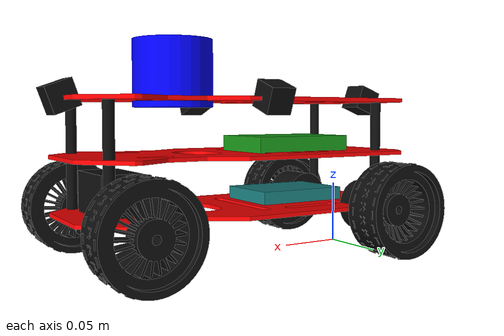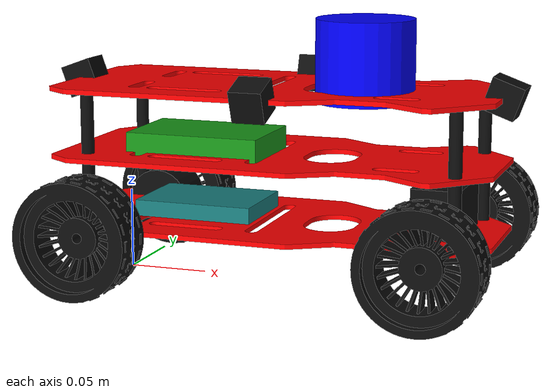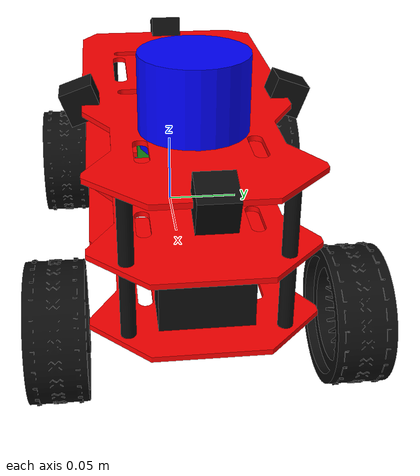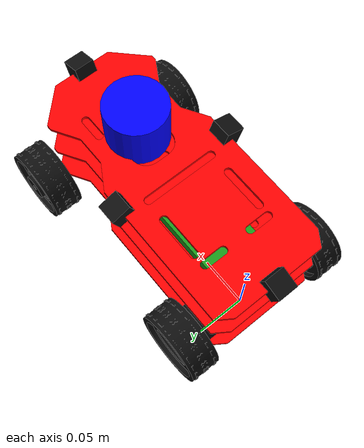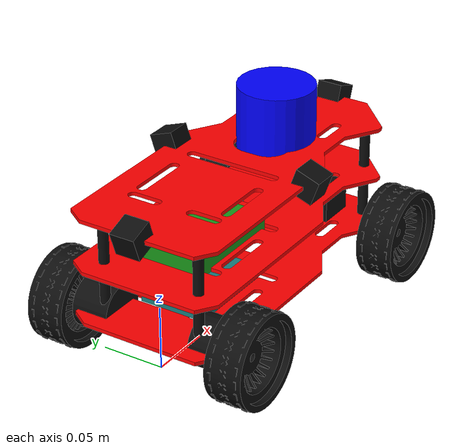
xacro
<?xml version="1.0"?>
<robot name="ackermann_robot" xmlns:xacro="http://www.ros.org/wiki/xacro">

  <xacro:include filename="$(find ackermann_robot)/urdf/all_sensors.xacro" />
  <!-- Standoff positions -->
  <xacro:property name="standoff_x" value="${chassis_length/2 - 0.02}"/>
  <xacro:property name="standoff_y" value="${chassis_width/2 - 0.02}"/>

  <!-- Materials -->
  <material name="chassis_red">
    <color rgba="1.0 0.0 0.0 1"/>
  </material>

  <material name="wheel_black">
    <color rgba="0.05 0.05 0.05 1"/>
  </material>

  <!-- Base frame            -->
  <!-- Robot center reference -->

  <link name="base_link"></link>
  <link name="base_footprint"></link>

  <joint name="base_footprint_joint" type="fixed">
      <parent link="base_link"/>
      <child link="base_footprint"/>
      <origin xyz="0 0 -${chassis_height/2}" rpy="0 0 0"/>
  </joint>
  <!-- Chassis               -->
  <link name="chassis_link">
    <inertial>
      <origin xyz="0 0 ${chassis_height/2}"/>
      <mass value="${chassis_mass}"/>
      <inertia
        ixx="1.50903123e-04" ixy="4.70052075e-08" ixz="6.59784866e-15"
        iyy="8.14177826e-04" iyz="1.01460270e-15"
        izz="9.64991335e-04"/>
      </inertial>

    <!-- Bottom plate -->
    <visual>
      <origin xyz="0 0 ${wheel_radius + plate_thickness/2}" rpy="0 0 0"/>
      <geometry>
        <mesh filename="package://ackermann_robot/meshes/chassis_visual.stl" scale="0.001 0.001 0.001"/>
      </geometry>
      <material name="chassis_red"/>
    </visual>

    <!-- Middle plate -->
    <visual>
      <origin xyz="0 0 ${wheel_radius + plate_thickness/2 + plate_thickness + standoff_height}" rpy="0 0 0"/>
      <geometry>
        <mesh filename="package://ackermann_robot/meshes/chassis_visual.stl" scale="0.001 0.001 0.001"></mesh>
      </geometry>
      <material name="chassis_red"/>
    </visual>

    <!-- Top plate -->
    <visual>
      <origin xyz="0 0 ${wheel_radius + plate_thickness/2 + 2*plate_thickness + 2*standoff_height}" rpy="0 0 0"/>
      <geometry>
        <mesh filename="package://ackermann_robot/meshes/chassis_visual.stl" scale="0.001 0.001 0.001"></mesh>
      </geometry>
      <material name="chassis_red"/>
    </visual>

    <!-- Front left standoff -->
    <visual>
      <origin xyz="${standoff_x} ${standoff_y} ${wheel_radius + plate_thickness + standoff_height/2}" rpy="0 0 0"/>
      <geometry>
        <cylinder radius="${standoff_radius}" length="${standoff_height}"/>
      </geometry>
      <material name="wheel_black"/>
    </visual>

    <!-- Front right -->
    <visual>
      <origin xyz="${standoff_x} -${standoff_y} ${wheel_radius + plate_thickness + standoff_height/2}" rpy="0 0 0"/>
      <geometry>
        <cylinder radius="${standoff_radius}" length="${standoff_height}"/>
      </geometry>
      <material name="wheel_black"/>
    </visual>

    <!-- Rear left -->
    <visual>
      <origin xyz="-${standoff_x} ${standoff_y} ${wheel_radius + plate_thickness + standoff_height/2}" rpy="0 0 0"/>
      <geometry>
        <cylinder radius="${standoff_radius}" length="${standoff_height}"/>
      </geometry>
      <material name="wheel_black"/>
    </visual>

    <!-- Rear right -->
    <visual>
      <origin xyz="-${standoff_x} -${standoff_y} ${wheel_radius + plate_thickness + standoff_height/2}" rpy="0 0 0"/>
      <geometry>
        <cylinder radius="${standoff_radius}" length="${standoff_height}"/>
      </geometry>
      <material name="wheel_black"/>
    </visual>

    <!-- Upper Front left standoff -->
    <visual>
      <origin xyz="${standoff_x} ${standoff_y} ${wheel_radius + 2*plate_thickness + standoff_height + standoff_height/2}" rpy="0 0 0"/>
      <geometry>
        <cylinder radius="${standoff_radius}" length="${standoff_height}"/>
      </geometry>
      <material name="wheel_black"/>
    </visual>

    <!-- Upper Front right -->
    <visual>
      <origin xyz="${standoff_x} -${standoff_y} ${wheel_radius + 2*plate_thickness + standoff_height + standoff_height/2}" rpy="0 0 0"/>
      <geometry>
        <cylinder radius="${standoff_radius}" length="${standoff_height}"/>
      </geometry>
      <material name="wheel_black"/>
    </visual>

    <!-- Upper Rear left -->
    <visual>
      <origin xyz="-${standoff_x} ${standoff_y} ${wheel_radius + 2*plate_thickness + standoff_height + standoff_height/2}" rpy="0 0 0"/>
      <geometry>
        <cylinder radius="${standoff_radius}" length="${standoff_height}"/>
      </geometry>
      <material name="wheel_black"/>
    </visual>

    <!-- Upper Rear right -->
    <visual>
      <origin xyz="-${standoff_x} -${standoff_y} ${wheel_radius + 2*plate_thickness + standoff_height + standoff_height/2}" rpy="0 0 0"/>
      <geometry>
        <cylinder radius="${standoff_radius}" length="${standoff_height}"/>
      </geometry>
      <material name="wheel_black"/>
    </visual>

    <!-- Collision: simple box for stable physics -->
    <collision>
      <origin xyz="0 0 ${wheel_radius + chassis_height/2}"/>
      <geometry>
        <box size="${chassis_length} ${chassis_width} ${chassis_height}"/>
      </geometry>
    </collision>

  </link>

  <!-- base → chassis -->
  <joint name="base_to_chassis" type="fixed">
    <parent link="base_link"/>
    <child link="chassis_link"/>
    <origin xyz="${wheelbase/2} 0 0" rpy="0 0 0"/>
  </joint>

  <!-- Rear wheel macro      -->
  <xacro:macro name="rear_wheel" params="name x y">
    <!-- Wheel -->
    <link name="${name}_wheel_link">
      <inertial>
        <mass value="${wheel_mass}"/>
        <inertia
          ixx="3.21561728e-05" ixy="1.40375656e-15" ixz="-3.63476706e-15"
          iyy="5.65938896e-05" iyz="-1.35718707e-16"
          izz="3.21561633e-05"/>
      </inertial>
      <visual>
        <origin rpy=" 0 0 3.1412"/>
        <geometry>
          <mesh filename="package://ackermann_robot/meshes/${name}_wheel.stl"
          scale="0.001 0.001 0.001"/>
        </geometry>
        <material name="wheel_black"/>
      </visual>

      <collision>
        <origin rpy="1.5708 0 0"/>
        <geometry>
          <cylinder radius="${wheel_radius}" length="${wheel_width}"/>
        </geometry>
      </collision>
    </link>

    <!-- Gazebo friction for wheels -->
    <gazebo reference="${name}_wheel_link">
      <mu1>1.0</mu1>
      <mu2>1.0</mu2>
    </gazebo>

    <joint name="${name}_wheel_joint" type="continuous">
      <parent link="chassis_link"/>
      <child link="${name}_wheel_link"/>
      <origin xyz="${x} ${y} ${wheel_radius}"/>
      <axis xyz="0 1 0"/>
    </joint>
  </xacro:macro>

  <!-- Front steering macro  -->
  <xacro:macro name="front_steered_wheel" params="name x y">

    <!-- steering knuckle -->
    <link name="${name}_steer_link">
      <inertial>
        <origin xyz="0 0 0"/>
        <mass value="0.01"/>
        <inertia
          ixx="1e-5" ixy="0" ixz="0"
          iyy="1e-5" iyz="0"
          izz="1e-5"/>
      </inertial>
    </link>

    <joint name="${name}_steer_joint" type="revolute">
      <parent link="chassis_link"/>
      <child link="${name}_steer_link"/>
      <origin xyz="${x} ${y} ${wheel_radius}"/>
      <axis xyz="0 0 1"/>
      <limit lower="-0.6" upper="0.6" effort="10" velocity="2"/>
    </joint>

    <!-- wheel -->
    <link name="${name}_wheel_link">
      <inertial>
        <mass value="${wheel_mass}"/>
        <inertia
          ixx="3e-5" ixy="0" ixz="0"
          iyy="3e-5" iyz="0"
          izz="3e-5"/>
      </inertial>

      <visual>
        <origin rpy="0 0 3.1412"/>
        <geometry>
        <mesh filename="package://ackermann_robot/meshes/${name}_wheel.stl"
        scale="0.001 0.001 0.001"/>
        </geometry>
        <material name="wheel_black"/>
      </visual>

      <collision>
        <origin rpy="1.5708 0 0"/>
        <geometry>
          <cylinder radius="${wheel_radius}" length="${wheel_width}"/>
        </geometry>
      </collision>
    </link>

    <!-- Gazebo friction for wheels -->
    <gazebo reference="${name}_wheel_link">
      <mu1>1.0</mu1>
      <mu2>1.0</mu2>
    </gazebo>

    <joint name="${name}_wheel_joint" type="continuous">
      <parent link="${name}_steer_link"/>
      <child link="${name}_wheel_link"/>
      <axis xyz="0 1 0"/>
    </joint>

  </xacro:macro>

  <!-- Wheel placement       -->

  <!-- Rear drive wheels -->
  <xacro:rear_wheel
      name="rear_left"
      x="-${wheelbase/2}"
      y="${track/2}"/>

  <xacro:rear_wheel
      name="rear_right"
      x="-${wheelbase/2}"
      y="-${track/2}"/>

  <!-- Front steering wheels -->
  <xacro:front_steered_wheel
      name="front_left"
      x="${wheelbase/2}"
      y="${track/2}"/>

  <xacro:front_steered_wheel
      name="front_right"
      x="${wheelbase/2}"
      y="-${track/2}"/>

  <!-- Gazebo plugins        -->

  <!-- Physics properties for chassis -->
  <gazebo reference="chassis_link">
    <mu1>0.8</mu1>
    <mu2>0.8</mu2>
  </gazebo>
  <gazebo>
    <plugin filename="gz-sim-ackermann-steering-system" name="gz::sim::systems::AckermannSteering">
      <left_steering_joint>front_left_steer_joint</left_steering_joint>
      <right_steering_joint>front_right_steer_joint</right_steering_joint>
      <left_joint>rear_left_wheel_joint</left_joint>
      <right_joint>rear_right_wheel_joint</right_joint>
      <wheel_base>0.205</wheel_base>
      <wheel_separation>0.152</wheel_separation>
      <kingpin_width>0.152</kingpin_width>
      <wheel_radius>0.036</wheel_radius>
      <steering_limit>1.0</steering_limit>
      <topic>/cmd_vel</topic>
      <odom_topic>/odom</odom_topic>
      <frame_id>odom</frame_id>
      <child_frame_id>base_link</child_frame_id>
      <odom_publish_frequency>30</odom_publish_frequency>
    </plugin>
    <plugin filename="gz-sim-joint-state-publisher-system" name="gz::sim::systems::JointStatePublisher">
      <topic>/joint_states</topic>
    </plugin>
  </gazebo>
  <material name="arduino_blue">
    <color rgba="0.1 0.5 0.5 1"/>
  </material>
  <material name="sbc_green">
    <color rgba="0.1 0.6 0.1 1"/>
  </material>
  <!-- Extra Visuals         -->
  <!-- Front steering servo -->
  <link name="front_servo_link">
    <visual>
      <geometry>
        <box size="0.03 0.05 0.03"/>
      </geometry>
      <material name="wheel_black"/>
    </visual>
  </link>
  <joint name="front_servo_joint" type="fixed">
    <parent link="chassis_link"/>
    <child link="front_servo_link"/>
    <origin rpy="0 0 0" xyz="0.1 0 ${wheel_radius*1.5}"/>
  </joint>
  <!-- Rear wheel motors -->
  <link name="rear_left_motor_link">
    <visual>
      <origin rpy="1.5708 0 0"/>
      <geometry>
        <cylinder length="0.03" radius="0.02"/>
      </geometry>
      <material name="wheel_black"/>
    </visual>
  </link>
  <joint name="rear_left_motor_joint" type="fixed">
    <parent link="chassis_link"/>
    <child link="rear_left_motor_link"/>
    <origin rpy="0 0 0" xyz="-0.1025 0.05 0.036"/>
  </joint>
  <link name="rear_right_motor_link">
    <visual>
      <origin rpy="1.5708 0 0"/>
      <geometry>
        <cylinder length="0.03" radius="0.02"/>
      </geometry>
      <material name="wheel_black"/>
    </visual>
  </link>
  <joint name="rear_right_motor_joint" type="fixed">
    <parent link="chassis_link"/>
    <child link="rear_right_motor_link"/>
    <origin rpy="0 0 0" xyz="-0.1025 -0.05 0.036"/>
  </joint>
  <!-- Arduino -->
  <link name="arduino_link">
    <visual>
      <geometry>
        <box size="0.075 0.053 0.01"/>
      </geometry>
      <material name="arduino_blue"/>
    </visual>
  </link>
  <joint name="arduino_joint" type="fixed">
    <parent link="chassis_link"/>
    <child link="arduino_link"/>
    <origin rpy="0 0 0" xyz="-${wheelbase/4} 0.0 0.045"/>
  </joint>
  <!-- SBC -->
  <link name="sbc_link">
    <visual>
      <geometry>
        <box size="0.085 0.056 0.015"/>
      </geometry>
      <material name="sbc_green"/>
    </visual>
  </link>
  <joint name="sbc_joint" type="fixed">
    <parent link="chassis_link"/>
    <child link="sbc_link"/>
    <origin rpy="0 0 0" xyz="-${wheelbase/4} 0.0 0.085"/>
  </joint>
</robot>

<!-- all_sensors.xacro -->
<robot xmlns:xacro="http://www.ros.org/wiki/xacro">
  <!-- Real hardware values  -->

  <!-- Dual plate chassis -->
  <xacro:property name="plate_thickness" value="0.002"/>
  <xacro:property name="standoff_height" value="0.04"/>
  <xacro:property name="standoff_radius" value="0.004"/>

  <!-- Chassis -->
  <xacro:property name="chassis_length" value="0.27"/>
  <xacro:property name="chassis_width"  value="0.1205"/>
  <xacro:property name="chassis_height" value="${3*plate_thickness + 2*standoff_height}"/>
  <xacro:property name="chassis_mass"   value="0.13442"/>

  <!-- Wheels -->
  <xacro:property name="wheel_radius" value="0.036"/>
  <xacro:property name="wheel_width"  value="0.03"/>
  <xacro:property name="wheel_mass"   value="0.0677"/>

  <!-- Geometry -->
  <xacro:property name="wheelbase" value="0.21"/>
  <xacro:property name="track" value="0.152"/>

  <xacro:property name="imu_z" value="0.05"/>
  <xacro:property name="lidar_z" value="0.14"/>
  <xacro:property name="lidar_x_offset" value="0.05"/>

  <xacro:property name="camera_size" value="0.02" />

  <xacro:property name="camera_z" value="${wheel_radius + chassis_height}"/>
  <xacro:property name="cam_pitch" value="0.3490"/>

  <xacro:include filename="$(find ackermann_robot)/urdf/sensors_cameras.xacro" />
  <xacro:include filename="$(find ackermann_robot)/urdf/sensors_imu.xacro" />
  <xacro:include filename="$(find ackermann_robot)/urdf/sensors_lidar.xacro" />

  <xacro:sensor_imu name="imu" parent="base_link">
    <origin x="${wheelbase/2}" y="0" z="${imu_z}" rpy="0 0 0"/>
  </xacro:sensor_imu>

  <xacro:sensor_lidar name="lidar" x="${wheelbase/2 + lidar_x_offset}" y="0.0" z="${lidar_z}" roll="0.0" pitch="0.0" yaw="0.0"/>

  <xacro:wide_angle_camera
    name="front"
    x="${wheelbase/2 + chassis_length/2}" y="0.0" z="${camera_z}"
    roll="0.0" pitch="${cam_pitch}" yaw="0.0"
    width="1280" height="720" fov="2.0944"
    fx="369.5" fy="369.5" cx="640" cy="360"
    k1="0.0" k2="0.0" k3="0.0" p1="0.0" p2="0.0"/>

  <xacro:wide_angle_camera
    name="left"
    x="${wheelbase/2}" y="${chassis_width/2}" z="${camera_z}"
    roll="0.0" pitch="${cam_pitch}" yaw="1.5708"
    width="1280" height="720" fov="2.0944"
    fx="369.5" fy="369.5" cx="640" cy="360"
    k1="0.0" k2="0.0" k3="0.0" p1="0.0" p2="0.0"/>

  <xacro:wide_angle_camera
    name="right"
    x="${wheelbase/2}" y="-${chassis_width/2}" z="${camera_z}"
    roll="0.0" pitch="${cam_pitch}" yaw="-1.5708"
    width="1280" height="720" fov="2.0944"
    fx="369.5" fy="369.5" cx="640" cy="360"
    k1="0.0" k2="0.0" k3="0.0" p1="0.0" p2="0.0"/>

  <xacro:wide_angle_camera
    name="rear"
    x="${wheelbase/2 - chassis_length/2}" y="0.0" z="${camera_z}"
    roll="0.0" pitch="${cam_pitch}" yaw="3.14159"
    width="1280" height="720" fov="2.0944"
    fx="369.5" fy="369.5" cx="640" cy="360"
    k1="0.0" k2="0.0" k3="0.0" p1="0.0" p2="0.0" />

</robot>

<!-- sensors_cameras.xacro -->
<robot xmlns:xacro="http://www.ros.org/wiki/xacro">

  <!-- |               WIDE ANGLE CAMERA MACRO DEFINITION                | -->
  <!-- Defines a camera link, joint, and Gazebo sensor plugin with distortion -->
  <xacro:macro name="wide_angle_camera" params="name x y z roll pitch yaw width height fov fx fy cx cy k1 k2 k3 p1 p2">
    <!-- Camera Link: Physical representation of the camera -->
    <link name="${name}_camera_link">
      <visual>
        <origin xyz="0 0 0" rpy="0 0 0"/>
        <geometry>
          <box size="0.02 0.02 0.02"/>
        </geometry>
        <material name="wheel_black"/>
      </visual>
    </link>

    <!-- Camera Joint: Attaches camera to the base_link -->
    <joint name="${name}_camera_joint" type="fixed">
      <parent link="base_link"/>
      <child link="${name}_camera_link"/>
      <origin xyz="${x} ${y} ${z}" rpy="${roll} ${pitch} ${yaw}"/>
    </joint>

    <!-- Gazebo Sensor Plugin: Simulates a wide-angle camera -->
    <gazebo reference="${name}_camera_link">
      <sensor name="${name}_camera" type="wideanglecamera">
        <camera>
          <horizontal_fov>${fov}</horizontal_fov>
          <image>
            <width>${width}</width>
            <height>${height}</height>
            <format>R8G8B8</format>
          </image>
          <clip>
            <near>0.1</near>
            <far>100</far>
          </clip>
          <!-- Distortion parameters -->
          <distortion>
            <k1>${k1}</k1>
            <k2>${k2}</k2>
            <k3>${k3}</k3>
            <p1>${p1}</p1>
            <p2>${p2}</p2>
          </distortion>
          <!-- Lens configuration for wide angle/fisheye simulation -->
          <lens>
            <!-- type element is mandatory -->
            <type>custom</type>
            <!-- manually defined mapping function r = c1*f*fun(theta/c2 + c3) -->
            <!-- More information here: https://en.wikipedia.org/wiki/Fisheye_lens#Mapping_function -->
            <custom_function>
              <c1>1.05</c1>
              <!-- linear scaling -->
              <c2>4</c2>
              <!-- angle scaling -->
              <f>1.0</f>
              <!-- one more scaling parameter -->
              <fun>tan</fun>
              <!-- one of sin,tan,id -->
            </custom_function>
            <!-- if it is set to `true` your horizontal FOV will ramain as defined -->
            <!-- othervise it depends on lens type and custom function, if there is one -->
            <scale_to_hfov>true</scale_to_hfov>
            <!-- resolution of the cubemap texture, the highter it is - the sharper is your image -->
            <env_texture_size>512</env_texture_size>
            <!-- Intrinsic matrix parameters -->
            <intrinsics>
              <fx>${fx}</fx>
              <fy>${fy}</fy>
              <cx>${cx}</cx>
              <cy>${cy}</cy>
            </intrinsics>
            <projection>
              <p_fx>${fx}</p_fx>
              <p_fy>${fy}</p_fy>
              <p_cx>${cx}</p_cx>
              <p_cy>${cy}</p_cy>
              <tx>0</tx>
              <ty>0</ty>
            </projection>
          </lens>
        </camera>
        <always_on>1</always_on>
        <update_rate>30</update_rate>
        <visualize>true</visualize>
        <topic>${name}_camera/image</topic>
      </sensor>
    </gazebo>
  </xacro:macro>

</robot>

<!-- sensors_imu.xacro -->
<robot xmlns:xacro="http://www.ros.org/wiki/xacro">

  <!-- Macro for IMU -->
  <xacro:macro name="sensor_imu" params="name parent *origin update_rate:=1000">
    <link name="${name}_link">
      <inertial>
        <mass value="0.001"/>
        <inertia ixx="1e-6" ixy="0" ixz="0" iyy="1e-6" iyz="0" izz="1e-6"/>
      </inertial>
    </link>
    <joint name="${name}_joint" type="fixed">
      <parent link="${parent}"/>
      <child link="${name}_link"/>
      <xacro:insert_block name="origin"/>
    </joint>
    <gazebo reference="${name}_joint">
      <preserveFixedJoint>true</preserveFixedJoint>
    </gazebo>
    <gazebo reference="${name}_link">
      <sensor name="${name}_sensor" type="imu">
        <always_on>1</always_on>
        <update_rate>${update_rate}</update_rate>
        <topic>/imu</topic>
      </sensor>
    </gazebo>
  </xacro:macro>

</robot>

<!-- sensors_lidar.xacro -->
<robot xmlns:xacro="http://www.ros.org/wiki/xacro">

<!-- Macro for GPU Lidar -->
  <xacro:macro name="sensor_lidar" params="name x y z roll pitch yaw update_rate:=10 samples:=360 resolution:=1 min_angle:=0.0 max_angle:=6.28318 range_min:=0.1 range_max:=5.0">
    <link name="${name}_link">
      <visual>
        <geometry>
          <cylinder radius="0.03" length="0.05"/>
        </geometry>
        <material name="blue">
            <color rgba="0 0 1 1"/>
        </material>
      </visual>
      <inertial>
        <mass value="0.1"/>
        <inertia ixx="1e-4" ixy="0" ixz="0" iyy="1e-4" iyz="0" izz="1e-4"/>
      </inertial>
    </link>

    <joint name="${name}_joint" type="fixed">
      <parent link="base_link"/>
      <child link="${name}_link"/>
      <origin xyz="${x} ${y} ${z}" rpy="${roll} ${pitch} ${yaw}" />
    </joint>

    <gazebo reference="${name}_joint">
      <preserveFixedJoint>true</preserveFixedJoint>
    </gazebo>

    <gazebo reference="${name}_link">
      <sensor name="${name}_sensor" type="gpu_lidar">
        <lidar>
          <scan>
            <horizontal>
              <samples>${samples}</samples>
              <resolution>${resolution}</resolution>
              <min_angle>${min_angle}</min_angle>
              <max_angle>${max_angle}</max_angle>
            </horizontal>
            <vertical>
              <samples>1</samples>
              <resolution>1</resolution>
              <min_angle>0</min_angle>
              <max_angle>0</max_angle>
            </vertical>
          </scan>
          <range>
            <min>${range_min}</min>
            <max>${range_max}</max>
            <resolution>0.1</resolution>
          </range>
        </lidar>
        <always_on>1</always_on>
        <visualize>true</visualize>
        <topic>/scan</topic>
        <gz_frame_id>${name}_link</gz_frame_id>
        <update_rate>${update_rate}</update_rate>
      </sensor>
    </gazebo>
  </xacro:macro>
</robot>
